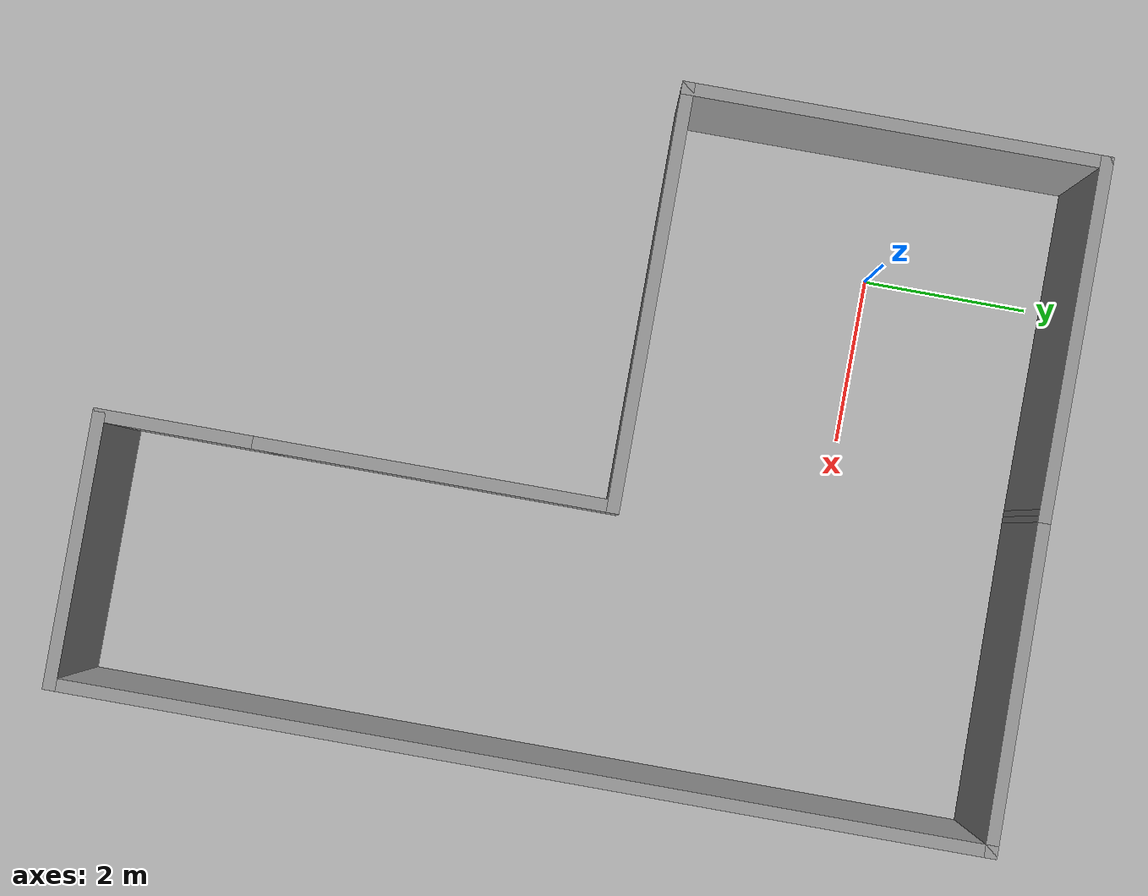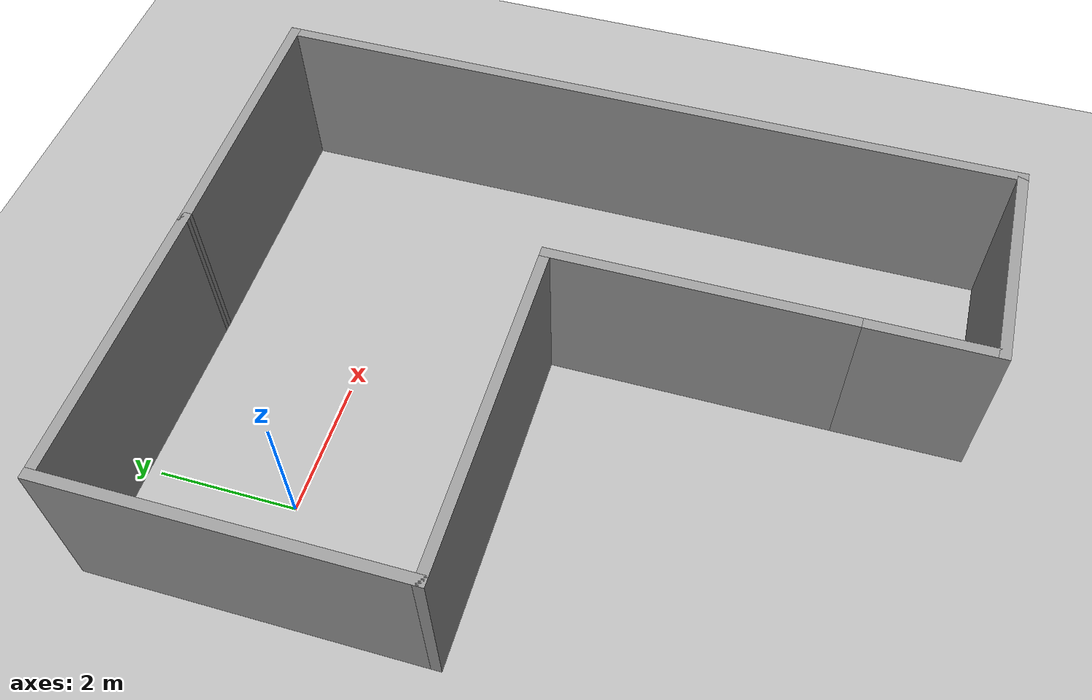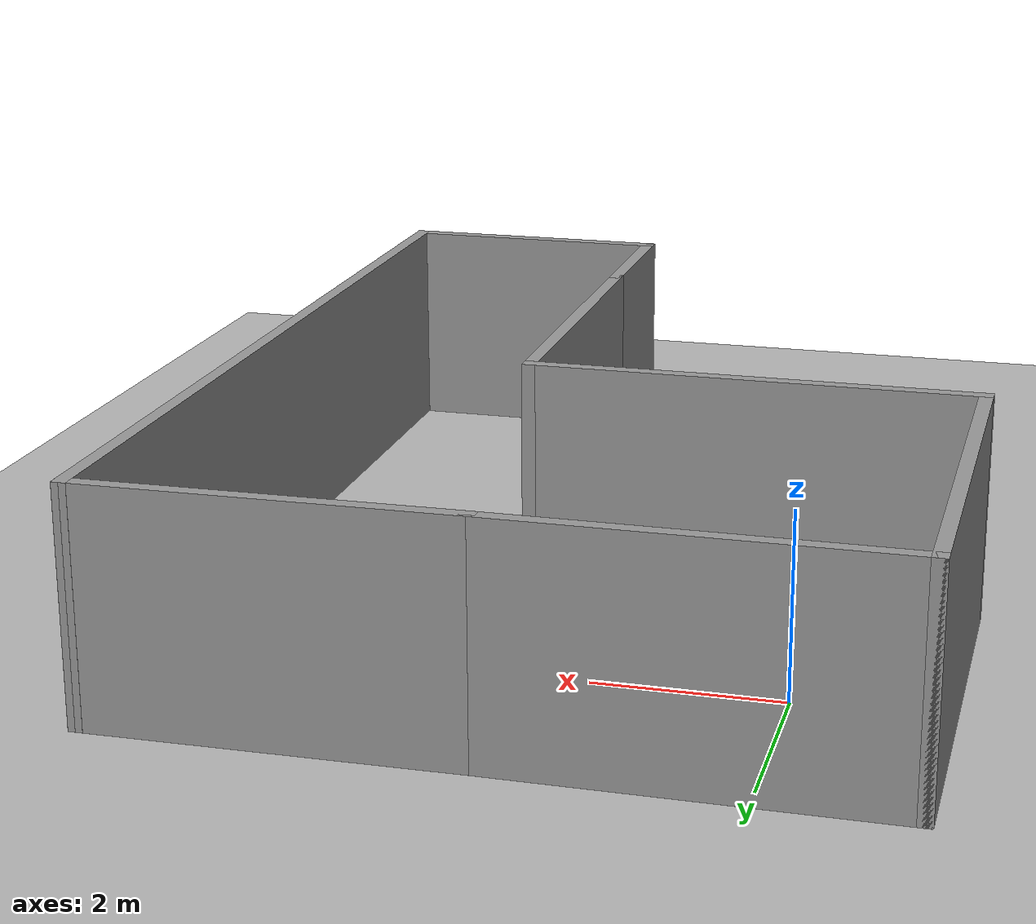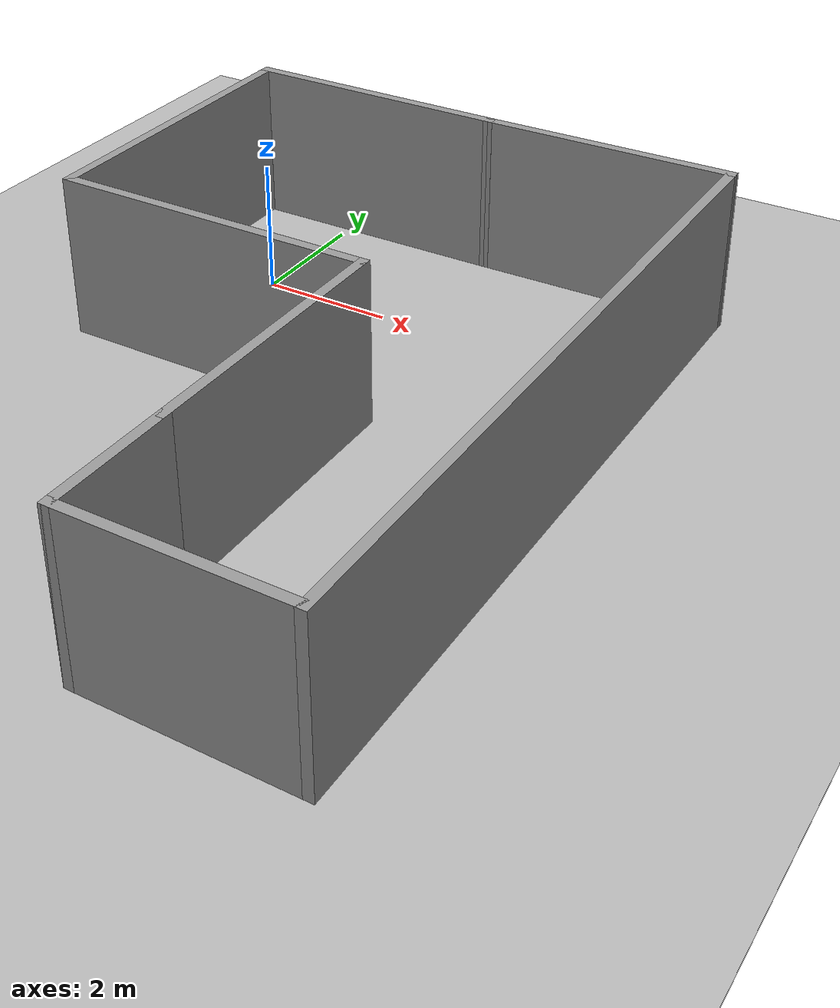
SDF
<sdf version="1.7">
 <world name="lab_world">
  <gravity>0 0 -9.8</gravity>
  <model name="ground_plane">
   <static>1</static>
   <link name="link">
    <collision name="collision">
     <geometry><plane><normal>0 0 1</normal><size>100 100</size></plane></geometry>
     <surface><friction><ode><mu>100</mu><mu2>50</mu2></ode></friction></surface>
    </collision>
    <visual name="visual">
     <cast_shadows>0</cast_shadows>
     <geometry><plane><normal>0 0 1</normal><size>100 100</size></plane></geometry>
     <material>
      <script><uri>file://media/materials/scripts/gazebo.material</uri><name>Gazebo/Grey</name></script>
     </material>
    </visual>
   </link>
  </model>
  <light name="sun" type="directional">
   <pose>0 0 10 0 -0 0</pose>
   <diffuse>0.8 0.8 0.8 1</diffuse>
   <specular>0.2 0.2 0.2 1</specular>
   <attenuation>
    <range>1000</range>
    <constant>0.9</constant>
    <linear>0.01</linear>
    <quadratic>0.001</quadratic>
   </attenuation>
   <direction>-0.5 0.1 -0.9</direction>
   <spot><inner_angle>0</inner_angle><outer_angle>0</outer_angle><falloff>0</falloff></spot>
  </light>
  <magnetic_field>6e-06 2.3e-05 -4.2e-05</magnetic_field>
  <atmosphere type="adiabatic"/>
  <physics type="ode">
   <max_step_size>0.001</max_step_size>
   <real_time_factor>1</real_time_factor>
   <real_time_update_rate>1000</real_time_update_rate>
  </physics>
  <scene><ambient>0.4 0.4 0.4 1</ambient><background>0.7 0.7 0.7 1</background><shadows>1</shadows></scene>
  <spherical_coordinates>
   <surface_model>EARTH_WGS84</surface_model>
   <latitude_deg>0</latitude_deg>
   <longitude_deg>0</longitude_deg>
   <elevation>0</elevation>
   <heading_deg>0</heading_deg>
  </spherical_coordinates>
  <model name="guai_road">
   <pose>2.43107 -3.11893 0 0 -0 0</pose>
   <link name="Wall_1">
    <collision name="Wall_1_Collision">
     <geometry><box><size>5 0.15 2.5</size></box></geometry>
     <pose>0 0 1.25 0 -0 0</pose>
    </collision>
    <visual name="Wall_1_Visual">
     <pose>0 0 1.25 0 -0 0</pose>
     <geometry><box><size>5 0.15 2.5</size></box></geometry>
     <material>
      <script><uri>file://media/materials/scripts/gazebo.material</uri><name>Gazebo/Grey</name></script>
      <ambient>1 1 1 1</ambient>
     </material>
     <meta><layer>0</layer></meta>
    </visual>
    <pose>-3.97548 2.94952 0 0 -0 1.5708</pose>
   </link>
   <link name="Wall_10">
    <collision name="Wall_10_Collision">
     <geometry><box><size>11 0.15 2.5</size></box></geometry>
     <pose>0 0 1.25 0 -0 0</pose>
    </collision>
    <visual name="Wall_10_Visual">
     <pose>0 0 1.25 0 -0 0</pose>
     <geometry><box><size>11 0.15 2.5</size></box></geometry>
     <material>
      <script><uri>file://media/materials/scripts/gazebo.material</uri><name>Gazebo/Grey</name></script>
      <ambient>1 1 1 1</ambient>
     </material>
     <meta><layer>0</layer></meta>
    </visual>
    <pose>3.97452 -0.000483 0 0 -0 1.5708</pose>
   </link>
   <link name="Wall_11">
    <collision name="Wall_11_Collision">
     <geometry><box><size>4.00033 0.15 2.5</size></box></geometry>
     <pose>0 0 1.25 0 -0 0</pose>
    </collision>
    <visual name="Wall_11_Visual">
     <pose>0 0 1.25 0 -0 0</pose>
     <geometry><box><size>4.00033 0.15 2.5</size></box></geometry>
     <material>
      <script><uri>file://media/materials/scripts/gazebo.material</uri><name>Gazebo/Grey</name></script>
      <ambient>1 1 1 1</ambient>
     </material>
     <meta><layer>0</layer></meta>
    </visual>
    <pose>2.04952 5.39952 0 0 -0 -3.12861</pose>
   </link>
   <link name="Wall_2">
    <collision name="Wall_2_Collision">
     <geometry><box><size>4.25 0.15 2.5</size></box></geometry>
     <pose>0 0 1.25 0 -0 0</pose>
    </collision>
    <visual name="Wall_2_Visual">
     <pose>0 0 1.25 0 -0 0</pose>
     <geometry><box><size>4.25 0.15 2.5</size></box></geometry>
     <material>
      <script><uri>file://media/materials/scripts/gazebo.material</uri><name>Gazebo/Grey</name></script>
      <ambient>1 1 1 1</ambient>
     </material>
     <meta><layer>0</layer></meta>
    </visual>
    <pose>-1.92548 5.37452 0 0 -0 0</pose>
   </link>
   <link name="Wall_6">
    <collision name="Wall_6_Collision">
     <geometry><box><size>5 0.15 2.5</size></box></geometry>
     <pose>0 0 1.25 0 -0 0</pose>
    </collision>
    <visual name="Wall_6_Visual">
     <pose>0 0 1.25 0 -0 0</pose>
     <geometry><box><size>5 0.15 2.5</size></box></geometry>
     <material>
      <script><uri>file://media/materials/scripts/gazebo.material</uri><name>Gazebo/Grey</name></script>
      <ambient>1 1 1 1</ambient>
     </material>
     <meta><layer>0</layer></meta>
    </visual>
    <pose>-1.55048 0.524516 0 0 -0 0</pose>
   </link>
   <link name="Wall_7">
    <collision name="Wall_7_Collision">
     <geometry><box><size>4.25 0.15 2.5</size></box></geometry>
     <pose>0 0 1.25 0 -0 0</pose>
    </collision>
    <visual name="Wall_7_Visual">
     <pose>0 0 1.25 0 -0 0</pose>
     <geometry><box><size>4.25 0.15 2.5</size></box></geometry>
     <material>
      <script><uri>file://media/materials/scripts/gazebo.material</uri><name>Gazebo/Grey</name></script>
      <ambient>1 1 1 1</ambient>
     </material>
     <meta><layer>0</layer></meta>
    </visual>
    <pose>0.874516 -1.52548 0 0 -0 -1.5708</pose>
   </link>
   <link name="Wall_8">
    <collision name="Wall_8_Collision">
     <geometry><box><size>2 0.15 2.5</size></box></geometry>
     <pose>0 0 1.25 0 -0 0</pose>
    </collision>
    <visual name="Wall_8_Visual">
     <pose>0 0 1.25 0 -0 0</pose>
     <geometry><box><size>2 0.15 2.5</size></box></geometry>
     <material>
      <script><uri>file://media/materials/scripts/gazebo.material</uri><name>Gazebo/Grey</name></script>
      <ambient>1 1 1 1</ambient>
     </material>
     <meta><layer>0</layer></meta>
    </visual>
    <pose>0.874516 -4.50048 0 0 -0 -1.5708</pose>
   </link>
   <link name="Wall_9">
    <collision name="Wall_9_Collision">
     <geometry><box><size>3.25 0.15 2.5</size></box></geometry>
     <pose>0 0 1.25 0 -0 0</pose>
    </collision>
    <visual name="Wall_9_Visual">
     <pose>0 0 1.25 0 -0 0</pose>
     <geometry><box><size>3.25 0.15 2.5</size></box></geometry>
     <material>
      <script><uri>file://media/materials/scripts/gazebo.material</uri><name>Gazebo/Grey</name></script>
      <ambient>1 1 1 1</ambient>
     </material>
     <meta><layer>0</layer></meta>
    </visual>
    <pose>2.42452 -5.42548 0 0 -0 0</pose>
   </link>
   <static>1</static>
  </model>
  <model name="Floor">
   <link name="main">
    <pose>0 0 0.01 0 -0 0</pose>
    <collision name="main_Collision"><geometry><box><size>40 40 0.01</size></box></geometry></collision>
    <visual name="main_Visual">
     <geometry><box><size>40 40 0.01</size></box></geometry>
     <material>
      <script>
       <uri>model://Floor/materials/scripts</uri>
       <uri>model://Floor/materials/textures</uri>
       <name>floor</name>
      </script>
     </material>
    </visual>
   </link>
   <static>1</static>
   <pose>2.87121 -0.982254 0 0 -0 0</pose>
  </model>
 </world>
</sdf>
